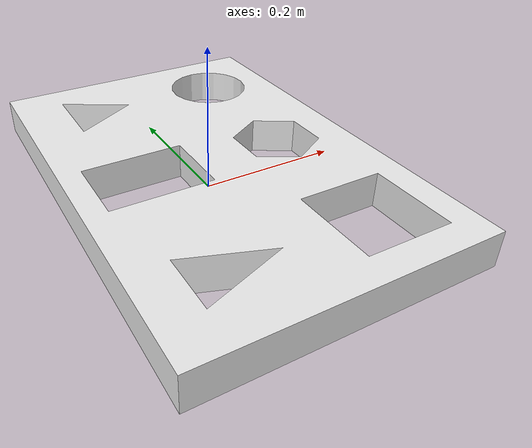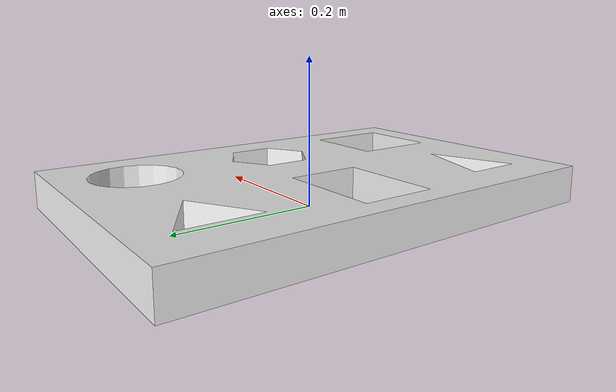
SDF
<sdf version='1.6'>
  <model name='place_table'>
  <static>1</static>
    <link name='place_table_link'>
      <pose frame=''>0 0 0 0 -0 0</pose>
      <inertial>
        <pose frame=''>0 -0 0.025 0 -0 0</pose>
        <mass>9.08676</mass>
        <inertia>
          <ixx>0.28895</ixx>
          <ixy>-0.00284871</ixy>
          <ixz>1.60901e-18</ixz>
          <iyy>0.129304</iyy>
          <iyz>4.08145e-19</iyz>
          <izz>0.414467</izz>
        </inertia>
      </inertial>
      <collision name='place_table_link_collision'>
        <pose frame=''>0 0 0 0 -0 0</pose>
        <geometry>
          <mesh>
            <scale>1 1 1</scale>
            <uri>model://place_table/meshes/place_table_link.STL</uri>
          </mesh>
        </geometry>
      </collision>
      <visual name='place_table_link_visual'>
        <pose frame=''>0 0 0 0 -0 0</pose>
        <geometry>
          <mesh>
            <scale>1 1 1</scale>
            <uri>model://place_table/meshes/place_table_link.STL</uri>
          </mesh>
        </geometry>
        <material>
          <script>
            <name>Gazebo/White</name>
            <uri>file://media/materials/scripts/gazebo.material</uri>
          </script>
        </material>
      </visual>
    </link>
  </model>
</sdf>
